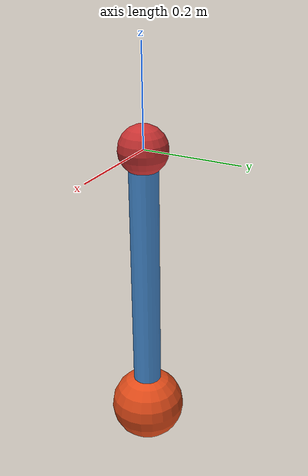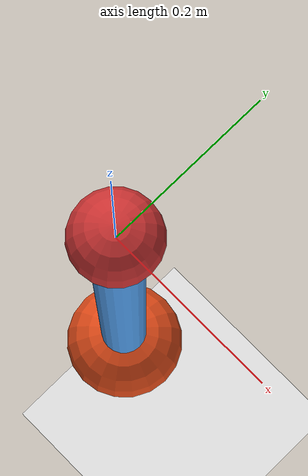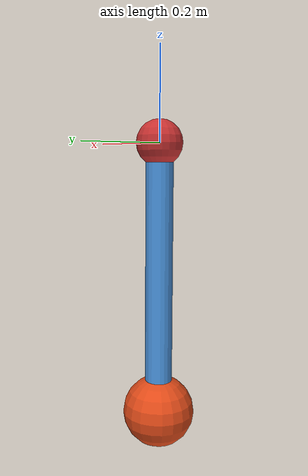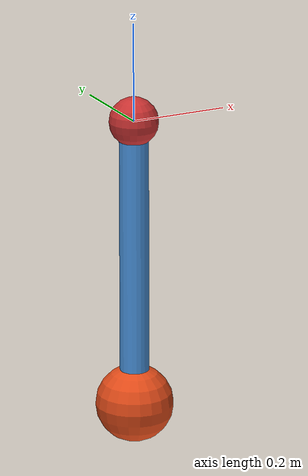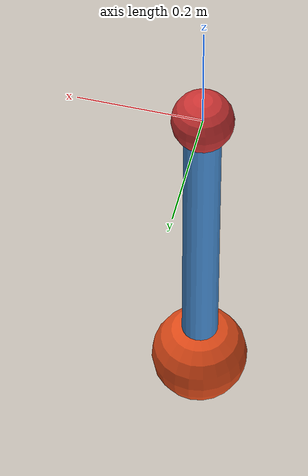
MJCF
<mujoco model="simple_pendulum">
  <!-- Compiler settings: coordinate system and angle units -->
  <compiler angle="radian" coordinate="local"/>

  <!-- Simulation options -->
  <option gravity="0 0 -9.81" timestep="0.002">
    <flag contact="disable"/>  <!-- No contacts needed for a pendulum -->
  </option>

  <!-- Default properties (inherited by child elements) -->
  <default>
    <joint damping="0.05"/>
    <geom rgba="0.3 0.6 0.9 1.0"/>
  </default>

  <!-- Visual settings -->
  <visual>
    <headlight ambient="0.3 0.3 0.3"/>
  </visual>

  <!-- The kinematic tree -->
  <worldbody>
    <!-- Light source -->
    <light pos="0 0 3" dir="0 0 -1" diffuse="1 1 1"/>

    <!-- Ground plane for visual reference -->
    <geom type="plane" size="2 2 0.01" rgba="0.9 0.9 0.9 1" pos="0 0 -1.5"/>

    <!-- Pivot point (visual only) -->
    <geom type="sphere" size="0.05" rgba="0.8 0.2 0.2 1" pos="0 0 0"/>

    <!-- The pendulum body -->
    <body name="pole" pos="0 0 0">
      <!-- Hinge joint: 1 DOF rotation around Y-axis -->
      <joint name="hinge" type="hinge" axis="0 1 0" pos="0 0 0"/>

      <!-- The pole geometry: a capsule (cylinder with rounded ends) -->
      <geom name="pole_geom" type="capsule" size="0.03" fromto="0 0 0 0 0 -0.6" mass="1.0"/>

      <!-- Tip mass (bob of the pendulum) -->
      <geom name="bob" type="sphere" size="0.08" pos="0 0 -0.6" mass="2.0"
            rgba="0.9 0.3 0.1 1.0"/>
    </body>
  </worldbody>

  <!-- Actuators: how we apply control to the system -->
  <actuator>
    <!-- Motor actuator: applies torque directly to the hinge joint -->
    <motor name="torque" joint="hinge" gear="1" ctrllimited="true" ctrlrange="-3 3"/>
  </actuator>

  <!-- Sensors: how we observe the system -->
  <sensor>
    <jointpos name="hinge_pos" joint="hinge"/>
    <jointvel name="hinge_vel" joint="hinge"/>
    <actuatorfrc name="motor_force" actuator="torque"/>
  </sensor>
</mujoco>
